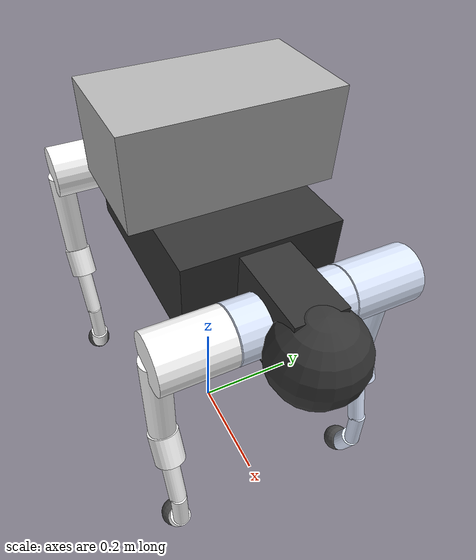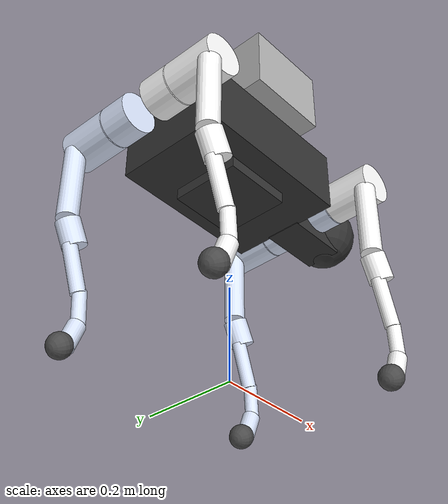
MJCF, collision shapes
<mujoco model="boying">
  <compiler angle="radian" meshdir="../meshes/" autolimits="true" />

<default>
    <default class="boying">
      <geom friction="0.4" margin="0.001" condim="1"/>
      <joint axis="0 1 0" damping="0.1" armature="0.01" frictionloss="0.2"/>
      <motor ctrlrange="-60 60"/>
      <default class="abduction">
        <joint axis="1 0 0" range="-0.69813 0.69813"/>
      </default>
      <default class="hip">
        <joint range="-0.175 4.712"/>
      </default>
      <default class="knee">
        <joint range="-2.7478 -0.9269"/>
        <motor ctrlrange="-60 60"/>
      </default>
      <default class="visual">
        <geom type="mesh" contype="0" conaffinity="0" group="2"/>
      </default>
      <default class="collision">
        <geom group="3"/>
        <default class="foot">
          <geom size="0.022" pos="-0.002 0 -0.213" priority="1" condim="6"
            friction="0.4 0.02 0.01"/>
        </default>
      </default>
    </default>
  </default>

  <asset>
    <mesh name="base" content_type="model/stl" file="base.STL"/>
    <mesh name="head" content_type="model/stl" file="head.STL"/>
    <mesh name="hm" content_type="model/stl" file="hm.STL"/>
    <mesh name="FL_hip" content_type="model/stl" file="FL_hip.STL"/>
    <mesh name="L_thigh" content_type="model/stl" file="L_thigh.STL"/>
    <mesh name="L_calf" content_type="model/stl" file="L_calf.STL"/>
    <mesh name="L_foot" content_type="model/stl" file="L_foot.STL"/>
    <mesh name="FR_hip" content_type="model/stl" file="FR_hip.STL"/>
    <mesh name="R_thigh" content_type="model/stl" file="R_thigh.STL"/>
    <mesh name="R_calf" content_type="model/stl" file="R_calf.STL"/>
    <mesh name="R_foot" content_type="model/stl" file="R_foot.STL"/>
    <mesh name="RL_hip" content_type="model/stl" file="RL_hip.STL"/>
    <mesh name="RR_hip" content_type="model/stl" file="RR_hip.STL"/>
  </asset>

  <worldbody>
    <body name="base" pos="0 0 0.50" childclass="boying">
      <inertial pos="0.0214537 0.0010748 0.0347026" quat="0.442117 0.55158 0.546154 0.449453" mass="12.3977" diaginertia="0.253792 0.21478 0.139597"/>
      <joint name="floating_to_word" type="free"/>
      <geom type="mesh" contype="0" conaffinity="0" group="1" density="0" rgba="0.203922 0.203922 0.203922 1" mesh="base"/>
      <geom class="collision" size="0.175 0.123 0.068" pos="0 0 0.005" type="box" rgba="0.203922 0.203922 0.203922 1"/>
      <geom class="collision" size="0.075 0.075 0.0125" pos="0 0 -0.0755" type="box" rgba="0.203922 0.203922 0.203922 1"/>
      <geom type="mesh" contype="0" conaffinity="0" group="1" density="0" rgba="0.203922 0.203922 0.203922 1" mesh="head"/>
      <geom class="collision" size="0.071 0.039 0.065" pos="0.24 0 0" type="box" rgba="0.203922 0.203922 0.203922 1"/>
      <geom class="collision" size="0.07" pos="0.315 0 0" rgba="0.203922 0.203922 0.203922 1"/>
      <geom type="mesh" contype="0" conaffinity="0" group="1" density="0" rgba="0.698039 0.698039 0.698039 1" mesh="hm"/>
      <geom class="collision" size="0.09 0.16 0.07" pos="0 0 0.15" type="box" rgba="0.698039 0.698039 0.698039 1"/>
      <site name="imu" pos="0 0 0" group="5" />
      <body name="FL_hip" pos="0.23795 0.055027 0">
        <inertial pos="-0.0071 0.000505 0" quat="0.503772 0.503772 0.496199 0.496199" mass="0.832922" diaginertia="0.00100309 0.000871 0.000606909"/>
        <joint name="FL_hip_joint" pos="0 0 0" axis="1 0 0" range="-0.681 0.681" actuatorfrcrange="-60 60"/>
        <geom type="mesh" contype="0" conaffinity="0" group="1" density="0" rgba="0.86667 0.9098 1 1" mesh="FL_hip"/>
        <geom class="collision" size="0.044 0.031" quat="0.707107 0.707107 0 0" type="cylinder" rgba="0.86667 0.9098 1 1"/>
        <body name="FL_thigh">
          <inertial pos="-0.003487 0.099349 -0.042506" quat="0.992842 0.112211 0.027623 0.0301661" mass="1.50976" diaginertia="0.0100085 0.00958144 0.0015191"/>
          <joint name="FL_thigh_joint" pos="0 0 0" axis="0 1 0" range="-0.175 4.712" actuatorfrcrange="-60 60"/>
          <geom type="mesh" contype="0" conaffinity="0" group="1" density="0" rgba="0.86667 0.9098 1 1" mesh="L_thigh"/>
          <geom class="collision" size="0.044 0.0545" pos="0 0.0875 0" quat="0.707107 0.707107 0 0" type="cylinder" rgba="0.86667 0.9098 1 1"/>
          <geom class="collision" size="0.022 0.085" pos="-0.02 0.127 -0.1063" type="cylinder" rgba="0.86667 0.9098 1 1"/>
          <geom class="collision" size="0.025 0.0275" pos="-0.006 0.127 -0.219" quat="0.973894 0 -0.227004 0" type="cylinder" rgba="0.86667 0.9098 1 1"/>
          <body name="FL_calf" pos="0 0.1267 -0.235" quat="0.894493 0 0.447082 0">
            <inertial pos="0.101823 6.31718e-05 -0.0647394" quat="0.320902 0.630731 0.628578 0.32263" mass="0.190862" diaginertia="0.00164183 0.00160675 5.20806e-05"/>
            <joint name="FL_calf_joint" pos="0 0 0" axis="0 1 0" range="-2.7478 -0.9269" actuatorfrcrange="-60 60"/>
            <geom type="mesh" contype="0" conaffinity="0" group="1" density="0" rgba="0.86667 0.9098 1 1" mesh="L_calf"/>
            <geom class="collision" size="0.015 0.05" pos="0.0514 0 -0.0265" quat="0.808028 0 -0.589145 0" type="cylinder" rgba="0.86667 0.9098 1 1"/>
            <geom class="collision" size="0.014 0.037" pos="0.127 0 -0.056" quat="0.878778 0 -0.47723 0" type="cylinder" rgba="0.86667 0.9098 1 1"/>
            <geom class="collision" size="0.018 0.0285" pos="0.17 0 -0.102" quat="0.961193 0 -0.275875 0" type="cylinder" rgba="0.86667 0.9098 1 1"/>
            <geom type="mesh" contype="0" conaffinity="0" group="1" density="0" rgba="0.29804 0.29804 0.29804 1" mesh="L_foot"/>
            <geom class="collision" size="0.025" pos="0.18 0 -0.136" rgba="0.29804 0.29804 0.29804 1" priority="1" condim="6"
            friction="0.4 0.02 0.01"/>
          </body>
        </body>
      </body>
      <body name="FR_hip" pos="0.23795 -0.054973 0">
        <inertial pos="-0.0071 -0.000505 0" quat="0.496199 0.496199 0.503772 0.503772" mass="0.832922" diaginertia="0.00100309 0.000871 0.000606909"/>
        <joint name="FR_hip_joint" pos="0 0 0" axis="1 0 0" range="-0.681 0.681" actuatorfrcrange="-60 60"/>
        <geom type="mesh" contype="0" conaffinity="0" group="1" density="0" rgba="0.86667 0.9098 1 1" mesh="FR_hip"/>
        <geom class="collision" size="0.044 0.031" quat="0.707107 0.707107 0 0" type="cylinder" rgba="0.86667 0.9098 1 1"/>
        <body name="FR_thigh">
          <inertial pos="-0.003876 -0.099428 -0.043098" quat="0.992467 -0.111413 0.029126 -0.041808" mass="1.518179" diaginertia="0.010166 0.009743 0.001533"/>
          <joint name="FR_thigh_joint" pos="0 0 0" axis="0 1 0" range="-0.175 4.712" actuatorfrcrange="-60 60"/>
          <geom type="mesh" contype="0" conaffinity="0" group="1" density="0" rgba="1 1 1 1" mesh="R_thigh"/>
          <geom class="collision" size="0.044 0.0545" pos="0 -0.0875 0" quat="0.707107 0.707107 0 0" type="cylinder" rgba="1 1 1 1"/>
          <geom class="collision" size="0.022 0.085" pos="-0.02 -0.127 -0.1063" type="cylinder" rgba="1 1 1 1"/>
          <geom class="collision" size="0.025 0.0275" pos="-0.006 -0.127 -0.219" quat="0.973894 0 -0.227004 0" type="cylinder" rgba="1 1 1 1"/>
          <body name="FR_calf" pos="0 -0.1267 -0.235" quat="0.894493 0 0.447082 0">
            <inertial pos="0.126802 -0.00011595 -0.0871932" quat="0.312639 0.63358 0.635832 0.310726" mass="0.103987" diaginertia="0.000865132 0.000849365 2.87672e-05"/>
            <joint name="FR_calf_joint" pos="0 0 0" axis="0 1 0" range="-2.7478 -0.9269" actuatorfrcrange="-60 60"/>
            <geom type="mesh" contype="0" conaffinity="0" group="1" density="0" rgba="1 1 1 1" mesh="R_calf"/>
            <geom class="collision" size="0.015 0.05" pos="0.0514 0 -0.0265" quat="0.808028 0 -0.589145 0" type="cylinder" rgba="1 1 1 1"/>
            <geom class="collision" size="0.014 0.037" pos="0.127 0 -0.056" quat="0.878778 0 -0.47723 0" type="cylinder" rgba="1 1 1 1"/>
            <geom class="collision" size="0.018 0.0285" pos="0.17 0 -0.102" quat="0.961193 0 -0.275875 0" type="cylinder" rgba="1 1 1 1"/>
            <geom type="mesh" contype="0" conaffinity="0" group="1" density="0" rgba="0.29804 0.29804 0.29804 1" mesh="R_foot"/>
            <geom class="collision" size="0.025" pos="0.18 0 -0.136" rgba="0.29804 0.29804 0.29804 1" priority="1" condim="6"
            friction="0.4 0.02 0.01"/>
          </body>
        </body>
      </body>
      <body name="RL_hip" pos="-0.23805 0.055027 0">
        <inertial pos="0.0071 0.000505 0" quat="0.496199 0.496199 0.503772 0.503772" mass="0.832922" diaginertia="0.00100309 0.000871 0.000606909"/>
        <joint name="RL_hip_joint" pos="0 0 0" axis="1 0 0" range="-0.681 0.681" actuatorfrcrange="-60 60"/>
        <geom type="mesh" contype="0" conaffinity="0" group="1" density="0" rgba="0.866667 0.909804 1 1" mesh="RL_hip"/>
        <geom class="collision" size="0.044 0.031" quat="0.707107 0.707107 0 0" type="cylinder" rgba="0.866667 0.909804 1 1"/>
        <body name="RL_thigh">
          <inertial pos="-0.003849 0.099349 -0.04284" quat="0.992376 0.112118 0.0290042 0.0421632" mass="1.50976" diaginertia="0.010087 0.00966369 0.00152633"/>
          <joint name="RL_thigh_joint" pos="0 0 0" axis="0 1 0" range="-0.175 4.712" actuatorfrcrange="-60 60"/>
          <geom type="mesh" contype="0" conaffinity="0" group="1" density="0" rgba="0.86667 0.9098 1 1" mesh="L_thigh"/>
          <geom class="collision" size="0.044 0.0545" pos="0 0.0875 0" quat="0.707107 0.707107 0 0" type="cylinder" rgba="0.86667 0.9098 1 1"/>
          <geom class="collision" size="0.022 0.085" pos="-0.02 0.127 -0.1063" type="cylinder" rgba="0.86667 0.9098 1 1"/>
          <geom class="collision" size="0.025 0.0275" pos="-0.006 0.127 -0.219" quat="0.973894 0 -0.227004 0" type="cylinder" rgba="0.86667 0.9098 1 1"/>
          <body name="RL_calf" pos="0 0.1267 -0.235" quat="0.894493 0 0.447082 0">
            <inertial pos="0.101823 6.31718e-05 -0.0647394" quat="0.320902 0.630731 0.628578 0.32263" mass="0.190862" diaginertia="0.00164183 0.00160675 5.20806e-05"/>
            <joint name="RL_calf_joint" pos="0 0 0" axis="0 1 0" range="-2.7478 -0.9269" actuatorfrcrange="-60 60"/>
            <geom type="mesh" contype="0" conaffinity="0" group="1" density="0" rgba="0.86667 0.9098 1 1" mesh="L_calf"/>
            <geom class="collision" size="0.015 0.05" pos="0.0514 0 -0.0265" quat="0.808028 0 -0.589145 0" type="cylinder" rgba="0.86667 0.9098 1 1"/>
            <geom class="collision" size="0.014 0.037" pos="0.127 0 -0.056" quat="0.878778 0 -0.47723 0" type="cylinder" rgba="0.86667 0.9098 1 1"/>
            <geom class="collision" size="0.018 0.0285" pos="0.17 0 -0.102" quat="0.961193 0 -0.275875 0" type="cylinder" rgba="0.86667 0.9098 1 1"/>
            <geom type="mesh" contype="0" conaffinity="0" group="1" density="0" rgba="0.29804 0.29804 0.29804 1" mesh="L_foot"/>
            <geom class="collision" size="0.025" pos="0.18 0 -0.136" rgba="0.29804 0.29804 0.29804 1" priority="1" condim="6"
            friction="0.4 0.02 0.01"/>
          </body>
        </body>
      </body>
      <body name="RR_hip" pos="-0.23805 -0.054973 0">
        <inertial pos="0.0071 -0.000505 0" quat="0.503772 0.503772 0.496199 0.496199" mass="0.832922" diaginertia="0.00100309 0.000871 0.000606909"/>
        <joint name="RR_hip_joint" pos="0 0 0" axis="1 0 0" range="-0.681 0.681" actuatorfrcrange="-60 60"/>
        <geom type="mesh" contype="0" conaffinity="0" group="1" density="0" rgba="1 1 1 1" mesh="RR_hip"/>
        <geom class="collision" size="0.044 0.031" quat="0.707107 0.707107 0 0" type="cylinder" rgba="1 1 1 1"/>
        <body name="RR_thigh">
          <inertial pos="-0.003876 -0.099428 -0.043098" quat="0.992467 -0.111413 0.029126 -0.041808" mass="1.518179" diaginertia="0.010166 0.009743 0.001533"/>
          <joint name="RR_thigh_joint" pos="0 0 0" axis="0 1 0" range="-0.175 4.712" actuatorfrcrange="-60 60"/>
          <geom type="mesh" contype="0" conaffinity="0" group="1" density="0" rgba="1 1 1 1" mesh="R_thigh"/>
          <geom class="collision" size="0.044 0.0545" pos="0 -0.0875 0" quat="0.707107 0.707107 0 0" type="cylinder" rgba="1 1 1 1"/>
          <geom class="collision" size="0.022 0.085" pos="-0.02 -0.127 -0.1063" type="cylinder" rgba="1 1 1 1"/>
          <geom class="collision" size="0.025 0.0275" pos="-0.006 -0.127 -0.219" quat="0.973894 0 -0.227004 0" type="cylinder" rgba="1 1 1 1"/>
          <body name="RR_calf" pos="0 -0.1267 -0.235" quat="0.894493 0 0.447082 0">
            <inertial pos="0.126802 -0.00011595 -0.0871932" quat="0.312639 0.63358 0.635832 0.310726" mass="0.103987" diaginertia="0.000865132 0.000849365 2.87672e-05"/>
            <joint name="RR_calf_joint" pos="0 0 0" axis="0 1 0" range="-2.7478 -0.9269" actuatorfrcrange="-60 60"/>
            <geom type="mesh" contype="0" conaffinity="0" group="1" density="0" rgba="1 1 1 1" mesh="R_calf"/>
            <geom class="collision" size="0.015 0.05" pos="0.0514 0 -0.0265" quat="0.808028 0 -0.589145 0" type="cylinder" rgba="1 1 1 1"/>
            <geom class="collision" size="0.014 0.037" pos="0.127 0 -0.056" quat="0.878778 0 -0.47723 0" type="cylinder" rgba="1 1 1 1"/>
            <geom class="collision" size="0.018 0.0285" pos="0.17 0 -0.102" quat="0.961193 0 -0.275875 0" type="cylinder" rgba="1 1 1 1"/>
            <geom type="mesh" contype="0" conaffinity="0" group="1" density="0" rgba="0.29804 0.29804 0.29804 1" mesh="R_foot"/>
            <geom class="collision" size="0.025" pos="0.18 0 -0.136" rgba="0.29804 0.29804 0.29804 1" priority="1" condim="6"
            friction="0.4 0.02 0.01"/>
          </body>
        </body>
      </body>
    </body>
  </worldbody>

  <actuator>
    <motor class="abduction" name="FR_hip" joint="FR_hip_joint" />
    <motor class="hip" name="FR_thigh" joint="FR_thigh_joint" />
    <motor class="knee" name="FR_calf" joint="FR_calf_joint" />
    <motor class="abduction" name="FL_hip" joint="FL_hip_joint" />
    <motor class="hip" name="FL_thigh" joint="FL_thigh_joint" />
    <motor class="knee" name="FL_calf" joint="FL_calf_joint" />
    <motor class="abduction" name="RR_hip" joint="RR_hip_joint" />
    <motor class="hip" name="RR_thigh" joint="RR_thigh_joint" />
    <motor class="knee" name="RR_calf" joint="RR_calf_joint" />
    <motor class="abduction" name="RL_hip" joint="RL_hip_joint" />
    <motor class="hip" name="RL_thigh" joint="RL_thigh_joint" />
    <motor class="knee" name="RL_calf" joint="RL_calf_joint" />
  </actuator>

  <sensor>
    <jointpos name="FR_hip_pos" joint="FR_hip_joint" />
    <jointpos name="FR_thigh_pos" joint="FR_thigh_joint" />
    <jointpos name="FR_calf_pos" joint="FR_calf_joint" />
    <jointpos name="FL_hip_pos" joint="FL_hip_joint" />
    <jointpos name="FL_thigh_pos" joint="FL_thigh_joint" />
    <jointpos name="FL_calf_pos" joint="FL_calf_joint" />
    <jointpos name="RR_hip_pos" joint="RR_hip_joint" />
    <jointpos name="RR_thigh_pos" joint="RR_thigh_joint" />
    <jointpos name="RR_calf_pos" joint="RR_calf_joint" />
    <jointpos name="RL_hip_pos" joint="RL_hip_joint" />
    <jointpos name="RL_thigh_pos" joint="RL_thigh_joint" />
    <jointpos name="RL_calf_pos" joint="RL_calf_joint" />

    <jointvel name="FR_hip_vel" joint="FR_hip_joint" />
    <jointvel name="FR_thigh_vel" joint="FR_thigh_joint" />
    <jointvel name="FR_calf_vel" joint="FR_calf_joint" />
    <jointvel name="FL_hip_vel" joint="FL_hip_joint" />
    <jointvel name="FL_thigh_vel" joint="FL_thigh_joint" />
    <jointvel name="FL_calf_vel" joint="FL_calf_joint" />
    <jointvel name="RR_hip_vel" joint="RR_hip_joint" />
    <jointvel name="RR_thigh_vel" joint="RR_thigh_joint" />
    <jointvel name="RR_calf_vel" joint="RR_calf_joint" />
    <jointvel name="RL_hip_vel" joint="RL_hip_joint" />
    <jointvel name="RL_thigh_vel" joint="RL_thigh_joint" />
    <jointvel name="RL_calf_vel" joint="RL_calf_joint" />

    <jointactuatorfrc name="FR_hip_torque" joint="FR_hip_joint" noise="0.01" />
    <jointactuatorfrc name="FR_thigh_torque" joint="FR_thigh_joint" noise="0.01" />
    <jointactuatorfrc name="FR_calf_torque" joint="FR_calf_joint" noise="0.01" />
    <jointactuatorfrc name="FL_hip_torque" joint="FL_hip_joint" noise="0.01" />
    <jointactuatorfrc name="FL_thigh_torque" joint="FL_thigh_joint" noise="0.01" />
    <jointactuatorfrc name="FL_calf_torque" joint="FL_calf_joint" noise="0.01" />
    <jointactuatorfrc name="RR_hip_torque" joint="RR_hip_joint" noise="0.01" />
    <jointactuatorfrc name="RR_thigh_torque" joint="RR_thigh_joint" noise="0.01" />
    <jointactuatorfrc name="RR_calf_torque" joint="RR_calf_joint" noise="0.01" />
    <jointactuatorfrc name="RL_hip_torque" joint="RL_hip_joint" noise="0.01" />
    <jointactuatorfrc name="RL_thigh_torque" joint="RL_thigh_joint" noise="0.01" />
    <jointactuatorfrc name="RL_calf_torque" joint="RL_calf_joint" noise="0.01" />

    <framequat name="imu_quat" objtype="site" objname="imu" />
    <gyro name="imu_gyro" site="imu" />
    <accelerometer name="imu_acc" site="imu" />

    <framepos name="frame_pos" objtype="site" objname="imu" />
    <framelinvel name="frame_vel" objtype="site" objname="imu" />
  </sensor>

  <keyframe>
    <key name="home" qpos="0 0 0.27 1 0 0 0 0 0.9 -1.8 0 0.9 -1.8 0 0.9 -1.8 0 0.9 -1.8"
      ctrl="0 0.9 -1.8 0 0.9 -1.8 0 0.9 -1.8 0 0.9 -1.8" />
  </keyframe>
</mujoco>
